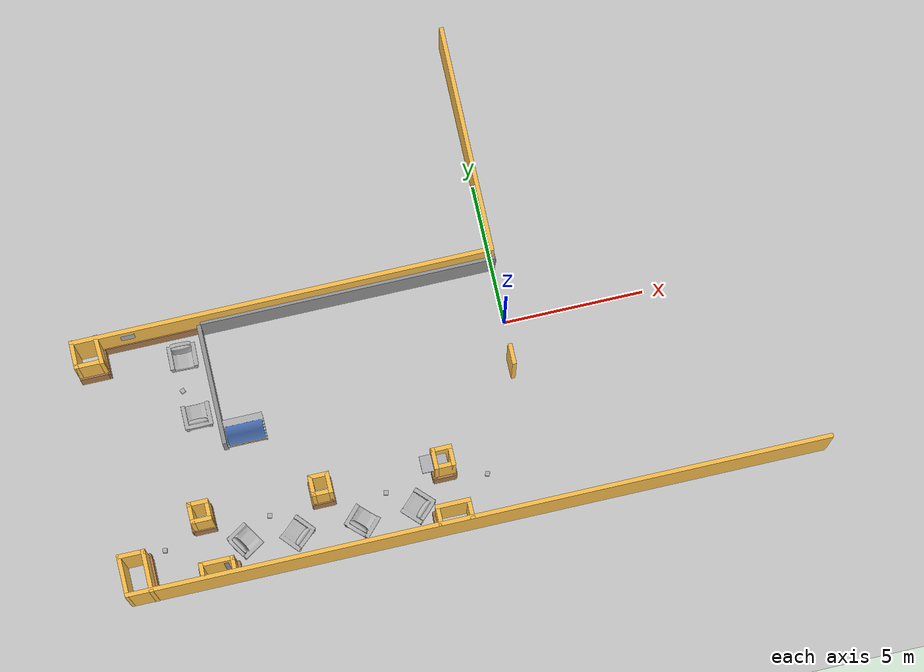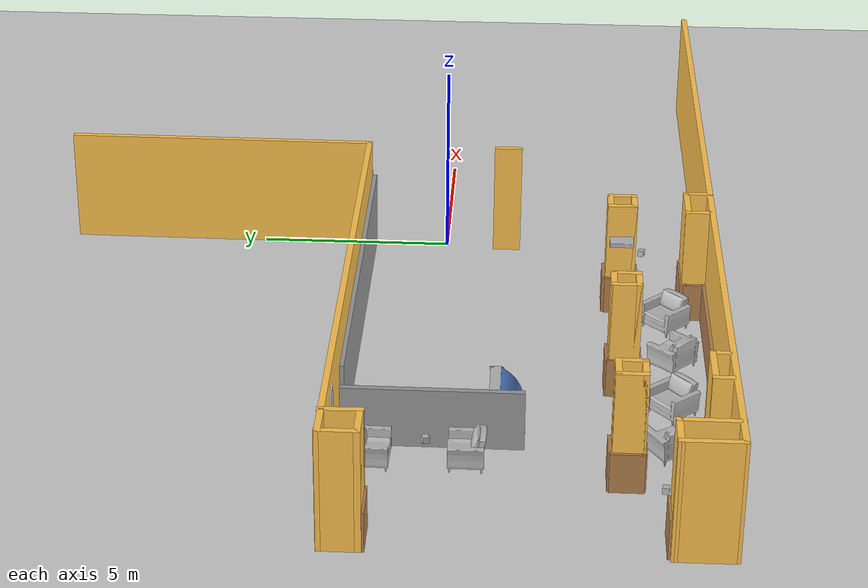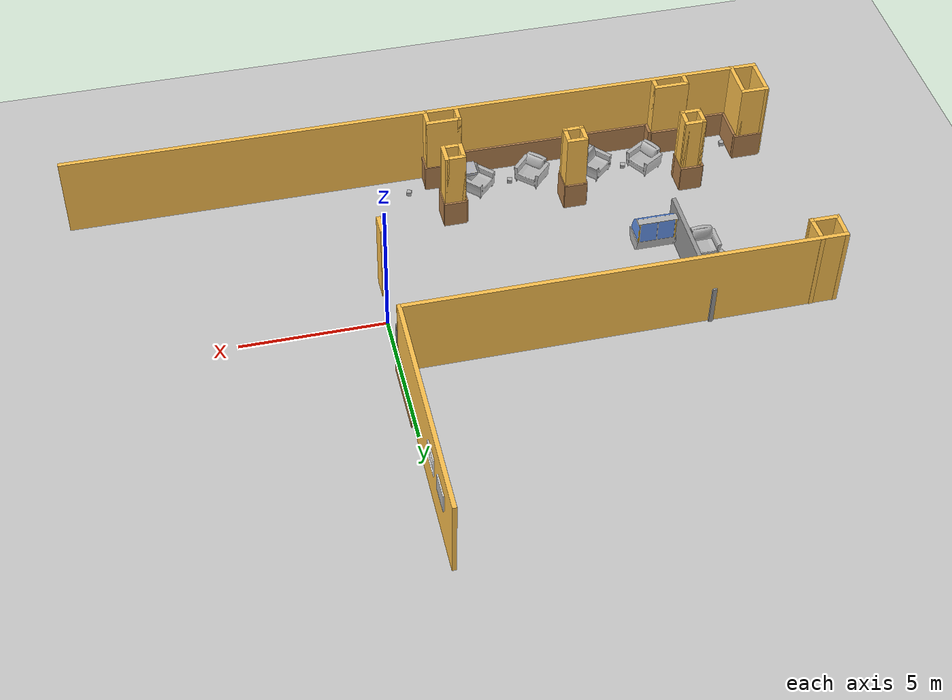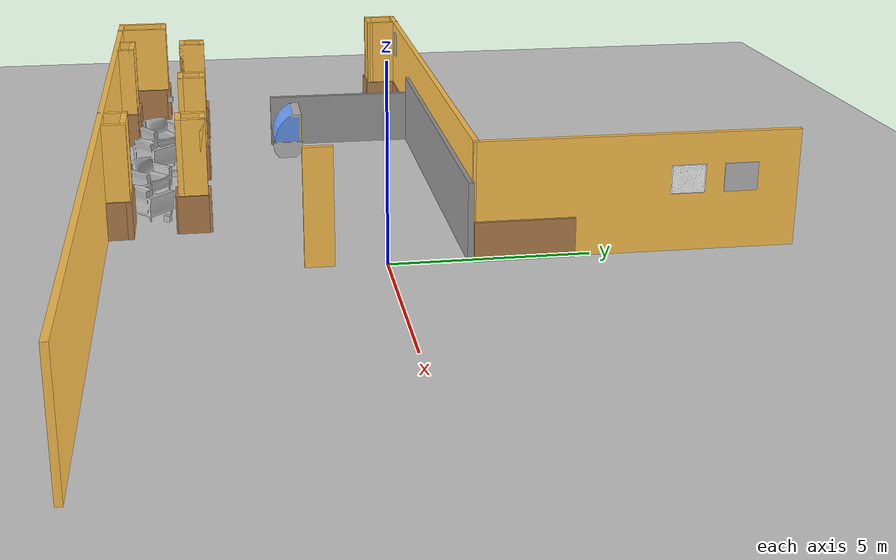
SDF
<sdf version="1.6">
 <world name="default">
  <model name="ground_plane">
   <static>1</static>
   <link name="link">
    <collision name="collision">
     <geometry><plane><normal>0 0 1</normal><size>100 100</size></plane></geometry>
     <surface><friction><ode><mu>100</mu><mu2>50</mu2></ode></friction></surface>
    </collision>
    <visual name="visual">
     <cast_shadows>0</cast_shadows>
     <geometry><plane><normal>0 0 1</normal><size>100 100</size></plane></geometry>
     <material>
      <script><uri>file://media/materials/scripts/gazebo.material</uri><name>Gazebo/Grey</name></script>
     </material>
    </visual>
   </link>
  </model>
  <model name="costa-gv">
   <pose>-2.49048 1.64389 0 0 -0 0</pose>
   <link name="Wall_10">
    <collision name="Wall_10_Collision">
     <geometry><box><size>15 0.15 3</size></box></geometry>
     <pose>0 0 1.5 0 -0 0</pose>
    </collision>
    <visual name="Wall_10_Visual">
     <pose>0 0 1.5 0 -0 0</pose>
     <geometry><box><size>15 0.15 3</size></box></geometry>
     <material>
      <script><uri>file://media/materials/scripts/gazebo.material</uri><name>Gazebo/Grey</name></script>
      <ambient>1 0.764706 0.305882 1</ambient>
     </material>
     <meta><layer>0</layer></meta>
    </visual>
    <pose>-4.93585 0.471568 0 0 -0 -3.14024</pose>
   </link>
   <link name="Wall_103">
    <collision name="Wall_103_Collision">
     <geometry><box><size>3.4811 0.15 1</size></box></geometry>
     <pose>0 0 0.5 0 -0 0</pose>
    </collision>
    <visual name="Wall_103_Visual">
     <pose>0 0 0.5 0 -0 0</pose>
     <geometry><box><size>3.4811 0.15 1</size></box></geometry>
     <material>
      <script><uri>file://media/materials/scripts/gazebo.material</uri><name>Gazebo/Wood</name></script>
      <ambient>1 1 1 1</ambient>
     </material>
     <meta><layer>0</layer></meta>
    </visual>
    <pose>-9.76907 0.427453 0 0 -0 3.14152</pose>
   </link>
   <link name="Wall_108">
    <collision name="Wall_108_Collision">
     <geometry><box><size>1 0.15 1</size></box></geometry>
     <pose>0 0 0.5 0 -0 0</pose>
    </collision>
    <visual name="Wall_108_Visual">
     <pose>0 0 0.5 0 -0 0</pose>
     <geometry><box><size>1 0.15 1</size></box></geometry>
     <material>
      <script><uri>file://media/materials/scripts/gazebo.material</uri><name>Gazebo/Wood</name></script>
      <ambient>1 1 1 1</ambient>
     </material>
     <meta><layer>0</layer></meta>
    </visual>
    <pose>-11.4344 -0.007502 0 0 -0 -1.5708</pose>
   </link>
   <link name="Wall_117">
    <collision name="Wall_117_Collision">
     <geometry><box><size>1 0.15 1</size></box></geometry>
     <pose>0 0 0.5 0 -0 0</pose>
    </collision>
    <visual name="Wall_117_Visual">
     <pose>0 0 0.5 0 -0 0</pose>
     <geometry><box><size>1 0.15 1</size></box></geometry>
     <material>
      <script><uri>file://media/materials/scripts/gazebo.material</uri><name>Gazebo/Wood</name></script>
      <ambient>1 1 1 1</ambient>
     </material>
     <meta><layer>0</layer></meta>
    </visual>
    <pose>-11.9319 -0.439362 0 0 -0 0</pose>
   </link>
   <link name="Wall_122">
    <collision name="Wall_122_Collision">
     <geometry><box><size>1 0.15 1</size></box></geometry>
     <pose>0 0 0.5 0 -0 0</pose>
    </collision>
    <visual name="Wall_122_Visual">
     <pose>0 0 0.5 0 -0 0</pose>
     <geometry><box><size>1 0.15 1</size></box></geometry>
     <material>
      <script><uri>file://media/materials/scripts/gazebo.material</uri><name>Gazebo/Wood</name></script>
      <ambient>1 1 1 1</ambient>
     </material>
     <meta><layer>0</layer></meta>
    </visual>
    <pose>-11.8018 -7.05636 0 0 -0 0</pose>
   </link>
   <link name="Wall_124">
    <collision name="Wall_124_Collision">
     <geometry><box><size>1.25 0.15 1</size></box></geometry>
     <pose>0 0 0.5 0 -0 0</pose>
    </collision>
    <visual name="Wall_124_Visual">
     <pose>0 0 0.5 0 -0 0</pose>
     <geometry><box><size>1.25 0.15 1</size></box></geometry>
     <material>
      <script><uri>file://media/materials/scripts/gazebo.material</uri><name>Gazebo/Wood</name></script>
      <ambient>1 1 1 1</ambient>
     </material>
     <meta><layer>0</layer></meta>
    </visual>
    <pose>-11.3608 -7.72636 0 0 -0 -1.5708</pose>
   </link>
   <link name="Wall_126">
    <collision name="Wall_126_Collision">
     <geometry><box><size>1.75 0.15 1</size></box></geometry>
     <pose>0 0 0.5 0 -0 0</pose>
    </collision>
    <visual name="Wall_126_Visual">
     <pose>0 0 0.5 0 -0 0</pose>
     <geometry><box><size>1.75 0.15 1</size></box></geometry>
     <material>
      <script><uri>file://media/materials/scripts/gazebo.material</uri><name>Gazebo/Wood</name></script>
      <ambient>1 1 1 1</ambient>
     </material>
     <meta><layer>0</layer></meta>
    </visual>
    <pose>-10.5508 -8.37536 0 0 -0 0</pose>
   </link>
   <link name="Wall_128">
    <collision name="Wall_128_Collision">
     <geometry><box><size>1.25 0.15 1</size></box></geometry>
     <pose>0 0 0.5 0 -0 0</pose>
    </collision>
    <visual name="Wall_128_Visual">
     <pose>0 0 0.5 0 -0 0</pose>
     <geometry><box><size>1.25 0.15 1</size></box></geometry>
     <material>
      <script><uri>file://media/materials/scripts/gazebo.material</uri><name>Gazebo/Wood</name></script>
      <ambient>1 1 1 1</ambient>
     </material>
     <meta><layer>0</layer></meta>
    </visual>
    <pose>-9.08885 -7.91136 0 0 -0 0</pose>
   </link>
   <link name="Wall_130">
    <collision name="Wall_130_Collision">
     <geometry><box><size>0.5 0.15 1</size></box></geometry>
     <pose>0 0 0.5 0 -0 0</pose>
    </collision>
    <visual name="Wall_130_Visual">
     <pose>0 0 0.5 0 -0 0</pose>
     <geometry><box><size>0.5 0.15 1</size></box></geometry>
     <material>
      <script><uri>file://media/materials/scripts/gazebo.material</uri><name>Gazebo/Wood</name></script>
      <ambient>1 1 1 1</ambient>
     </material>
     <meta><layer>0</layer></meta>
    </visual>
    <pose>-8.42085 -8.15736 0 0 -0 -1.5708</pose>
   </link>
   <link name="Wall_132">
    <collision name="Wall_132_Collision">
     <geometry><box><size>0.5 0.15 1</size></box></geometry>
     <pose>0 0 0.5 0 -0 0</pose>
    </collision>
    <visual name="Wall_132_Visual">
     <pose>0 0 0.5 0 -0 0</pose>
     <geometry><box><size>0.5 0.15 1</size></box></geometry>
     <material>
      <script><uri>file://media/materials/scripts/gazebo.material</uri><name>Gazebo/Wood</name></script>
      <ambient>1 1 1 1</ambient>
     </material>
     <meta><layer>0</layer></meta>
    </visual>
    <pose>-9.72985 -8.13736 0 0 -0 -1.5708</pose>
   </link>
   <link name="Wall_134">
    <collision name="Wall_134_Collision">
     <geometry><box><size>7 0.15 1</size></box></geometry>
     <pose>0 0 0.5 0 -0 0</pose>
    </collision>
    <visual name="Wall_134_Visual">
     <pose>0 0 0.5 0 -0 0</pose>
     <geometry><box><size>7 0.15 1</size></box></geometry>
     <material>
      <script><uri>file://media/materials/scripts/gazebo.material</uri><name>Gazebo/Wood</name></script>
      <ambient>1 1 1 1</ambient>
     </material>
     <meta><layer>0</layer></meta>
    </visual>
    <pose>-4.89485 -8.37536 0 0 -0 0</pose>
   </link>
   <link name="Wall_137">
    <collision name="Wall_137_Collision">
     <geometry><box><size>0.5 0.15 1</size></box></geometry>
     <pose>0 0 0.5 0 -0 0</pose>
    </collision>
    <visual name="Wall_137_Visual">
     <pose>0 0 0.5 0 -0 0</pose>
     <geometry><box><size>0.5 0.15 1</size></box></geometry>
     <material>
      <script><uri>file://media/materials/scripts/gazebo.material</uri><name>Gazebo/Wood</name></script>
      <ambient>1 1 1 1</ambient>
     </material>
     <meta><layer>0</layer></meta>
    </visual>
    <pose>-1.42185 -8.07636 0 0 -0 -1.5708</pose>
   </link>
   <link name="Wall_141">
    <collision name="Wall_141_Collision">
     <geometry><box><size>0.8 0.15 1</size></box></geometry>
     <pose>0 0 0.5 0 -0 0</pose>
    </collision>
    <visual name="Wall_141_Visual">
     <pose>0 0 0.5 0 -0 0</pose>
     <geometry><box><size>0.8 0.15 1</size></box></geometry>
     <material>
      <script><uri>file://media/materials/scripts/gazebo.material</uri><name>Gazebo/Wood</name></script>
      <ambient>1 1 1 1</ambient>
     </material>
     <meta><layer>0</layer></meta>
    </visual>
    <pose>-9.29371 -6.54229 0 0 -0 0</pose>
   </link>
   <link name="Wall_146">
    <collision name="Wall_146_Collision">
     <geometry><box><size>0.8 0.15 1</size></box></geometry>
     <pose>0 0 0.5 0 -0 0</pose>
    </collision>
    <visual name="Wall_146_Visual">
     <pose>0 0 0.5 0 -0 0</pose>
     <geometry><box><size>0.8 0.15 1</size></box></geometry>
     <material>
      <script><uri>file://media/materials/scripts/gazebo.material</uri><name>Gazebo/Wood</name></script>
      <ambient>1 1 1 1</ambient>
     </material>
     <meta><layer>0</layer></meta>
    </visual>
    <pose>-9.30375 -5.81726 0 0 -0 0</pose>
   </link>
   <link name="Wall_148">
    <collision name="Wall_148_Collision">
     <geometry><box><size>0.8 0.15 1</size></box></geometry>
     <pose>0 0 0.5 0 -0 0</pose>
    </collision>
    <visual name="Wall_148_Visual">
     <pose>0 0 0.5 0 -0 0</pose>
     <geometry><box><size>0.8 0.15 1</size></box></geometry>
     <material>
      <script><uri>file://media/materials/scripts/gazebo.material</uri><name>Gazebo/Wood</name></script>
      <ambient>1 1 1 1</ambient>
     </material>
     <meta><layer>0</layer></meta>
    </visual>
    <pose>-8.9742 -6.19261 0 0 -0 -1.5708</pose>
   </link>
   <link name="Wall_150">
    <collision name="Wall_150_Collision">
     <geometry><box><size>0.8 0.15 1</size></box></geometry>
     <pose>0 0 0.5 0 -0 0</pose>
    </collision>
    <visual name="Wall_150_Visual">
     <pose>0 0 0.5 0 -0 0</pose>
     <geometry><box><size>0.8 0.15 1</size></box></geometry>
     <material>
      <script><uri>file://media/materials/scripts/gazebo.material</uri><name>Gazebo/Wood</name></script>
      <ambient>1 1 1 1</ambient>
     </material>
     <meta><layer>0</layer></meta>
    </visual>
    <pose>-9.66903 -6.18254 0 0 -0 -1.5708</pose>
   </link>
   <link name="Wall_152">
    <collision name="Wall_152_Collision">
     <geometry><box><size>0.8 0.15 1</size></box></geometry>
     <pose>0 0 0.5 0 -0 0</pose>
    </collision>
    <visual name="Wall_152_Visual">
     <pose>0 0 0.5 0 -0 0</pose>
     <geometry><box><size>0.8 0.15 1</size></box></geometry>
     <material>
      <script><uri>file://media/materials/scripts/gazebo.material</uri><name>Gazebo/Wood</name></script>
      <ambient>1 1 1 1</ambient>
     </material>
     <meta><layer>0</layer></meta>
    </visual>
    <pose>-5.07028 -6.54841 0 0 -0 0</pose>
   </link>
   <link name="Wall_154">
    <collision name="Wall_154_Collision">
     <geometry><box><size>0.8 0.15 1</size></box></geometry>
     <pose>0 0 0.5 0 -0 0</pose>
    </collision>
    <visual name="Wall_154_Visual">
     <pose>0 0 0.5 0 -0 0</pose>
     <geometry><box><size>0.8 0.15 1</size></box></geometry>
     <material>
      <script><uri>file://media/materials/scripts/gazebo.material</uri><name>Gazebo/Wood</name></script>
      <ambient>1 1 1 1</ambient>
     </material>
     <meta><layer>0</layer></meta>
    </visual>
    <pose>-5.07028 -5.82927 0 0 -0 0</pose>
   </link>
   <link name="Wall_156">
    <collision name="Wall_156_Collision">
     <geometry><box><size>0.8 0.15 1</size></box></geometry>
     <pose>0 0 0.5 0 -0 0</pose>
    </collision>
    <visual name="Wall_156_Visual">
     <pose>0 0 0.5 0 -0 0</pose>
     <geometry><box><size>0.8 0.15 1</size></box></geometry>
     <material>
      <script><uri>file://media/materials/scripts/gazebo.material</uri><name>Gazebo/Wood</name></script>
      <ambient>1 1 1 1</ambient>
     </material>
     <meta><layer>0</layer></meta>
    </visual>
    <pose>-4.7294 -6.19422 0 0 -0 -1.5708</pose>
   </link>
   <link name="Wall_158">
    <collision name="Wall_158_Collision">
     <geometry><box><size>0.8 0.15 1</size></box></geometry>
     <pose>0 0 0.5 0 -0 0</pose>
    </collision>
    <visual name="Wall_158_Visual">
     <pose>0 0 0.5 0 -0 0</pose>
     <geometry><box><size>0.8 0.15 1</size></box></geometry>
     <material>
      <script><uri>file://media/materials/scripts/gazebo.material</uri><name>Gazebo/Wood</name></script>
      <ambient>1 1 1 1</ambient>
     </material>
     <meta><layer>0</layer></meta>
    </visual>
    <pose>-5.42191 -6.19422 0 0 -0 -1.5708</pose>
   </link>
   <link name="Wall_160">
    <collision name="Wall_160_Collision">
     <geometry><box><size>1.4 0.15 1</size></box></geometry>
     <pose>0 0 0.5 0 -0 0</pose>
    </collision>
    <visual name="Wall_160_Visual">
     <pose>0 0 0.5 0 -0 0</pose>
     <geometry><box><size>1.4 0.15 1</size></box></geometry>
     <material>
      <script><uri>file://media/materials/scripts/gazebo.material</uri><name>Gazebo/Wood</name></script>
      <ambient>1 1 1 1</ambient>
     </material>
     <meta><layer>0</layer></meta>
    </visual>
    <pose>-0.788355 -7.81357 0 0 -0 0</pose>
   </link>
   <link name="Wall_162">
    <collision name="Wall_162_Collision">
     <geometry><box><size>0.7 0.15 1</size></box></geometry>
     <pose>0 0 0.5 0 -0 0</pose>
    </collision>
    <visual name="Wall_162_Visual">
     <pose>0 0 0.5 0 -0 0</pose>
     <geometry><box><size>0.7 0.15 1</size></box></geometry>
     <material>
      <script><uri>file://media/materials/scripts/gazebo.material</uri><name>Gazebo/Wood</name></script>
      <ambient>1 1 1 1</ambient>
     </material>
     <meta><layer>0</layer></meta>
    </visual>
    <pose>-0.174848 -8.16836 0 0 -0 -1.5708</pose>
   </link>
   <link name="Wall_167">
    <collision name="Wall_167_Collision">
     <geometry><box><size>0.8 0.15 1</size></box></geometry>
     <pose>0 0 0.5 0 -0 0</pose>
    </collision>
    <visual name="Wall_167_Visual">
     <pose>0 0 0.5 0 -0 0</pose>
     <geometry><box><size>0.8 0.15 1</size></box></geometry>
     <material>
      <script><uri>file://media/materials/scripts/gazebo.material</uri><name>Gazebo/Wood</name></script>
      <ambient>1 1 1 1</ambient>
     </material>
     <meta><layer>0</layer></meta>
    </visual>
    <pose>-1.13366 -6.23417 0 0 -0 -1.5708</pose>
   </link>
   <link name="Wall_169">
    <collision name="Wall_169_Collision">
     <geometry><box><size>0.8 0.15 1</size></box></geometry>
     <pose>0 0 0.5 0 -0 0</pose>
    </collision>
    <visual name="Wall_169_Visual">
     <pose>0 0 0.5 0 -0 0</pose>
     <geometry><box><size>0.8 0.15 1</size></box></geometry>
     <material>
      <script><uri>file://media/materials/scripts/gazebo.material</uri><name>Gazebo/Wood</name></script>
      <ambient>1 1 1 1</ambient>
     </material>
     <meta><layer>0</layer></meta>
    </visual>
    <pose>-0.414512 -6.23417 0 0 -0 -1.5708</pose>
   </link>
   <link name="Wall_171">
    <collision name="Wall_171_Collision">
     <geometry><box><size>0.8 0.15 1</size></box></geometry>
     <pose>0 0 0.5 0 -0 0</pose>
    </collision>
    <visual name="Wall_171_Visual">
     <pose>0 0 0.5 0 -0 0</pose>
     <geometry><box><size>0.8 0.15 1</size></box></geometry>
     <material>
      <script><uri>file://media/materials/scripts/gazebo.material</uri><name>Gazebo/Wood</name></script>
      <ambient>1 1 1 1</ambient>
     </material>
     <meta><layer>0</layer></meta>
    </visual>
    <pose>-0.768707 -6.60168 0 0 -0 0</pose>
   </link>
   <link name="Wall_173">
    <collision name="Wall_173_Collision">
     <geometry><box><size>0.8 0.15 1</size></box></geometry>
     <pose>0 0 0.5 0 -0 0</pose>
    </collision>
    <visual name="Wall_173_Visual">
     <pose>0 0 0.5 0 -0 0</pose>
     <geometry><box><size>0.8 0.15 1</size></box></geometry>
     <material>
      <script><uri>file://media/materials/scripts/gazebo.material</uri><name>Gazebo/Wood</name></script>
      <ambient>1 1 1 1</ambient>
     </material>
     <meta><layer>0</layer></meta>
    </visual>
    <pose>-0.75539 -5.84258 0 0 -0 0</pose>
   </link>
   <link name="Wall_195">
    <collision name="Wall_195_Collision">
     <geometry><box><size>2.5 0.15 1</size></box></geometry>
     <pose>0 0 0.5 0 -0 0</pose>
    </collision>
    <visual name="Wall_195_Visual">
     <pose>0 0 0.5 0 -0 0</pose>
     <geometry><box><size>2.5 0.15 1</size></box></geometry>
     <material>
      <script><uri>file://media/materials/scripts/gazebo.material</uri><name>Gazebo/Wood</name></script>
      <ambient>1 1 1 1</ambient>
     </material>
     <meta><layer>0</layer></meta>
    </visual>
    <pose>2.58315 1.69081 0 0 -0 -1.5708</pose>
   </link>
   <link name="Wall_20">
    <collision name="Wall_20_Collision">
     <geometry><box><size>0.75 0.15 3</size></box></geometry>
     <pose>0 0 1.5 0 -0 0</pose>
    </collision>
    <visual name="Wall_20_Visual">
     <pose>0 0 1.5 0 -0 0</pose>
     <geometry><box><size>0.75 0.15 3</size></box></geometry>
     <material>
      <script><uri>file://media/materials/scripts/gazebo.material</uri><name>Gazebo/Grey</name></script>
      <ambient>1 0.764706 0.305882 1</ambient>
     </material>
     <meta><layer>0</layer></meta>
    </visual>
    <pose>-9.28985 -5.90136 0 0 -0 0</pose>
   </link>
   <link name="Wall_21">
    <collision name="Wall_21_Collision">
     <geometry><box><size>0.75 0.15 3</size></box></geometry>
     <pose>0 0 1.5 0 -0 0</pose>
    </collision>
    <visual name="Wall_21_Visual">
     <pose>0 0 1.5 0 -0 0</pose>
     <geometry><box><size>0.75 0.15 3</size></box></geometry>
     <material>
      <script><uri>file://media/materials/scripts/gazebo.material</uri><name>Gazebo/Grey</name></script>
      <ambient>1 0.764706 0.305882 1</ambient>
     </material>
     <meta><layer>0</layer></meta>
    </visual>
    <pose>-8.98985 -6.20136 0 0 -0 -1.5708</pose>
   </link>
   <link name="Wall_219">
    <collision name="Wall_219_Collision">
     <geometry><box><size>10.5 0.15 2</size></box></geometry>
     <pose>0 0 1 0 -0 0</pose>
    </collision>
    <visual name="Wall_219_Visual">
     <pose>0 0 1 0 -0 0</pose>
     <geometry><box><size>10.5 0.15 2</size></box></geometry>
     <material>
      <script><uri>file://media/materials/scripts/gazebo.material</uri><name>Gazebo/Grey</name></script>
      <ambient>1 1 1 1</ambient>
     </material>
     <meta><layer>0</layer></meta>
    </visual>
    <pose>-2.66326 0.365931 0 0 -0 3.14159</pose>
   </link>
   <link name="Wall_22">
    <collision name="Wall_22_Collision">
     <geometry><box><size>0.75 0.15 3</size></box></geometry>
     <pose>0 0 1.5 0 -0 0</pose>
    </collision>
    <visual name="Wall_22_Visual">
     <pose>0 0 1.5 0 -0 0</pose>
     <geometry><box><size>0.75 0.15 3</size></box></geometry>
     <material>
      <script><uri>file://media/materials/scripts/gazebo.material</uri><name>Gazebo/Grey</name></script>
      <ambient>1 0.764706 0.305882 1</ambient>
     </material>
     <meta><layer>0</layer></meta>
    </visual>
    <pose>-9.28985 -6.50136 0 0 -0 3.14159</pose>
   </link>
   <link name="Wall_23">
    <collision name="Wall_23_Collision">
     <geometry><box><size>0.75 0.15 3</size></box></geometry>
     <pose>0 0 1.5 0 -0 0</pose>
    </collision>
    <visual name="Wall_23_Visual">
     <pose>0 0 1.5 0 -0 0</pose>
     <geometry><box><size>0.75 0.15 3</size></box></geometry>
     <material>
      <script><uri>file://media/materials/scripts/gazebo.material</uri><name>Gazebo/Grey</name></script>
      <ambient>1 0.764706 0.305882 1</ambient>
     </material>
     <meta><layer>0</layer></meta>
    </visual>
    <pose>-9.58985 -6.20136 0 0 -0 1.5708</pose>
   </link>
   <link name="Wall_25">
    <collision name="Wall_25_Collision">
     <geometry><box><size>0.75 0.15 3</size></box></geometry>
     <pose>0 0 1.5 0 -0 0</pose>
    </collision>
    <visual name="Wall_25_Visual">
     <pose>0 0 1.5 0 -0 0</pose>
     <geometry><box><size>0.75 0.15 3</size></box></geometry>
     <material>
      <script><uri>file://media/materials/scripts/gazebo.material</uri><name>Gazebo/Grey</name></script>
      <ambient>1 0.764706 0.305882 1</ambient>
     </material>
     <meta><layer>0</layer></meta>
    </visual>
    <pose>-5.05985 -5.90136 0 0 -0 0</pose>
   </link>
   <link name="Wall_26">
    <collision name="Wall_26_Collision">
     <geometry><box><size>0.75 0.15 3</size></box></geometry>
     <pose>0 0 1.5 0 -0 0</pose>
    </collision>
    <visual name="Wall_26_Visual">
     <pose>0 0 1.5 0 -0 0</pose>
     <geometry><box><size>0.75 0.15 3</size></box></geometry>
     <material>
      <script><uri>file://media/materials/scripts/gazebo.material</uri><name>Gazebo/Grey</name></script>
      <ambient>1 0.764706 0.305882 1</ambient>
     </material>
     <meta><layer>0</layer></meta>
    </visual>
    <pose>-4.75985 -6.20136 0 0 -0 -1.5708</pose>
   </link>
   <link name="Wall_29">
    <collision name="Wall_29_Collision">
     <geometry><box><size>0.75 0.15 3</size></box></geometry>
     <pose>0 0 1.5 0 -0 0</pose>
    </collision>
    <visual name="Wall_29_Visual">
     <pose>0 0 1.5 0 -0 0</pose>
     <geometry><box><size>0.75 0.15 3</size></box></geometry>
     <material>
      <script><uri>file://media/materials/scripts/gazebo.material</uri><name>Gazebo/Grey</name></script>
      <ambient>1 0.764706 0.305882 1</ambient>
     </material>
     <meta><layer>0</layer></meta>
    </visual>
    <pose>-5.35985 -6.20136 0 0 -0 -1.5708</pose>
   </link>
   <link name="Wall_30">
    <collision name="Wall_30_Collision">
     <geometry><box><size>0.75 0.15 3</size></box></geometry>
     <pose>0 0 1.5 0 -0 0</pose>
    </collision>
    <visual name="Wall_30_Visual">
     <pose>0 0 1.5 0 -0 0</pose>
     <geometry><box><size>0.75 0.15 3</size></box></geometry>
     <material>
      <script><uri>file://media/materials/scripts/gazebo.material</uri><name>Gazebo/Grey</name></script>
      <ambient>1 0.764706 0.305882 1</ambient>
     </material>
     <meta><layer>0</layer></meta>
    </visual>
    <pose>-5.05985 -6.50136 0 0 -0 0</pose>
   </link>
   <link name="Wall_32">
    <collision name="Wall_32_Collision">
     <geometry><box><size>0.75 0.15 3</size></box></geometry>
     <pose>0 0 1.5 0 -0 0</pose>
    </collision>
    <visual name="Wall_32_Visual">
     <pose>0 0 1.5 0 -0 0</pose>
     <geometry><box><size>0.75 0.15 3</size></box></geometry>
     <material>
      <script><uri>file://media/materials/scripts/gazebo.material</uri><name>Gazebo/Grey</name></script>
      <ambient>1 0.764706 0.305882 1</ambient>
     </material>
     <meta><layer>0</layer></meta>
    </visual>
    <pose>-0.759848 -5.92136 0 0 -0 0</pose>
   </link>
   <link name="Wall_33">
    <collision name="Wall_33_Collision">
     <geometry><box><size>0.75 0.15 3</size></box></geometry>
     <pose>0 0 1.5 0 -0 0</pose>
    </collision>
    <visual name="Wall_33_Visual">
     <pose>0 0 1.5 0 -0 0</pose>
     <geometry><box><size>0.75 0.15 3</size></box></geometry>
     <material>
      <script><uri>file://media/materials/scripts/gazebo.material</uri><name>Gazebo/Grey</name></script>
      <ambient>1 0.764706 0.305882 1</ambient>
     </material>
     <meta><layer>0</layer></meta>
    </visual>
    <pose>-0.459848 -6.22136 0 0 -0 -1.5708</pose>
   </link>
   <link name="Wall_34">
    <collision name="Wall_34_Collision">
     <geometry><box><size>0.75 0.15 3</size></box></geometry>
     <pose>0 0 1.5 0 -0 0</pose>
    </collision>
    <visual name="Wall_34_Visual">
     <pose>0 0 1.5 0 -0 0</pose>
     <geometry><box><size>0.75 0.15 3</size></box></geometry>
     <material>
      <script><uri>file://media/materials/scripts/gazebo.material</uri><name>Gazebo/Grey</name></script>
      <ambient>1 0.764706 0.305882 1</ambient>
     </material>
     <meta><layer>0</layer></meta>
    </visual>
    <pose>-0.759848 -6.52136 0 0 -0 3.14159</pose>
   </link>
   <link name="Wall_35">
    <collision name="Wall_35_Collision">
     <geometry><box><size>0.75 0.15 3</size></box></geometry>
     <pose>0 0 1.5 0 -0 0</pose>
    </collision>
    <visual name="Wall_35_Visual">
     <pose>0 0 1.5 0 -0 0</pose>
     <geometry><box><size>0.75 0.15 3</size></box></geometry>
     <material>
      <script><uri>file://media/materials/scripts/gazebo.material</uri><name>Gazebo/Grey</name></script>
      <ambient>1 0.764706 0.305882 1</ambient>
     </material>
     <meta><layer>0</layer></meta>
    </visual>
    <pose>-1.05985 -6.22136 0 0 -0 1.5708</pose>
   </link>
   <link name="Wall_40">
    <collision name="Wall_40_Collision">
     <geometry><box><size>0.73251 0.15 3</size></box></geometry>
     <pose>0 0 1.5 0 -0 0</pose>
    </collision>
    <visual name="Wall_40_Visual">
     <pose>0 0 1.5 0 -0 0</pose>
     <geometry><box><size>0.73251 0.15 3</size></box></geometry>
     <material>
      <script><uri>file://media/materials/scripts/gazebo.material</uri><name>Gazebo/Grey</name></script>
      <ambient>1 0.764706 0.305882 1</ambient>
     </material>
     <meta><layer>0</layer></meta>
    </visual>
    <pose>2.35465 -3.26586 0 0 -0 1.57251</pose>
   </link>
   <link name="Wall_60">
    <collision name="Wall_60_Collision">
     <geometry><box><size>24.796 0.15 3</size></box></geometry>
     <pose>0 0 1.5 0 -0 0</pose>
    </collision>
    <visual name="Wall_60_Visual">
     <pose>0 0 1.5 0 -0 0</pose>
     <geometry><box><size>24.796 0.15 3</size></box></geometry>
     <material>
      <script><uri>file://media/materials/scripts/gazebo.material</uri><name>Gazebo/Grey</name></script>
      <ambient>1 0.764706 0.305882 1</ambient>
     </material>
     <meta><layer>0</layer></meta>
    </visual>
    <pose>0.037152 -8.45936 0 0 -0 3.14159</pose>
   </link>
   <link name="Wall_62">
    <collision name="Wall_62_Collision">
     <geometry><box><size>1.49162 0.15 3</size></box></geometry>
     <pose>0 0 1.5 0 -0 0</pose>
    </collision>
    <visual name="Wall_62_Visual">
     <pose>0 0 1.5 0 -0 0</pose>
     <geometry><box><size>1.49162 0.15 3</size></box></geometry>
     <material>
      <script><uri>file://media/materials/scripts/gazebo.material</uri><name>Gazebo/Grey</name></script>
      <ambient>1 0.764706 0.305882 1</ambient>
     </material>
     <meta><layer>0</layer></meta>
    </visual>
    <pose>-12.2913 -7.78886 0 0 -0 -1.56259</pose>
   </link>
   <link name="Wall_64">
    <collision name="Wall_64_Collision">
     <geometry><box><size>1 0.15 3</size></box></geometry>
     <pose>0 0 1.5 0 -0 0</pose>
    </collision>
    <visual name="Wall_64_Visual">
     <pose>0 0 1.5 0 -0 0</pose>
     <geometry><box><size>1 0.15 3</size></box></geometry>
     <material>
      <script><uri>file://media/materials/scripts/gazebo.material</uri><name>Gazebo/Grey</name></script>
      <ambient>1 0.764706 0.305882 1</ambient>
     </material>
     <meta><layer>0</layer></meta>
    </visual>
    <pose>-11.8718 -7.11836 0 0 -0 0</pose>
   </link>
   <link name="Wall_65">
    <collision name="Wall_65_Collision">
     <geometry><box><size>1.5 0.15 3</size></box></geometry>
     <pose>0 0 1.5 0 -0 0</pose>
    </collision>
    <visual name="Wall_65_Visual">
     <pose>0 0 1.5 0 -0 0</pose>
     <geometry><box><size>1.5 0.15 3</size></box></geometry>
     <material>
      <script><uri>file://media/materials/scripts/gazebo.material</uri><name>Gazebo/Grey</name></script>
      <ambient>1 0.764706 0.305882 1</ambient>
     </material>
     <meta><layer>0</layer></meta>
    </visual>
    <pose>-11.4468 -7.79336 0 0 -0 -1.5708</pose>
   </link>
   <link name="Wall_67">
    <collision name="Wall_67_Collision">
     <geometry><box><size>0.5 0.15 3</size></box></geometry>
     <pose>0 0 1.5 0 -0 0</pose>
    </collision>
    <visual name="Wall_67_Visual">
     <pose>0 0 1.5 0 -0 0</pose>
     <geometry><box><size>0.5 0.15 3</size></box></geometry>
     <material>
      <script><uri>file://media/materials/scripts/gazebo.material</uri><name>Gazebo/Grey</name></script>
      <ambient>1 0.764706 0.305882 1</ambient>
     </material>
     <meta><layer>0</layer></meta>
    </visual>
    <pose>-9.62785 -8.17636 0 0 -0 1.5708</pose>
   </link>
   <link name="Wall_69">
    <collision name="Wall_69_Collision">
     <geometry><box><size>0.15 0.15 2.5</size></box></geometry>
     <pose>0 0 1.25 0 -0 0</pose>
    </collision>
    <visual name="Wall_69_Visual">
     <pose>0 0 1.25 0 -0 0</pose>
     <geometry><box><size>0.15 0.15 2.5</size></box></geometry>
     <material>
      <script><uri>file://media/materials/scripts/gazebo.material</uri><name>Gazebo/Grey</name></script>
      <ambient>1 1 1 1</ambient>
     </material>
     <meta><layer>0</layer></meta>
    </visual>
    <pose>-8.77792 -8.00156 0 0 -0 0</pose>
   </link>
   <link name="Wall_70">
    <collision name="Wall_70_Collision">
     <geometry><box><size>0.15 0.15 2.5</size></box></geometry>
     <pose>0 0 1.25 0 -0 0</pose>
    </collision>
    <visual name="Wall_70_Visual">
     <pose>0 0 1.25 0 -0 0</pose>
     <geometry><box><size>0.15 0.15 2.5</size></box></geometry>
     <material>
      <script><uri>file://media/materials/scripts/gazebo.material</uri><name>Gazebo/Grey</name></script>
      <ambient>1 1 1 1</ambient>
     </material>
     <meta><layer>0</layer></meta>
    </visual>
    <pose>-8.77792 -8.00156 0 0 -0 0</pose>
   </link>
   <link name="Wall_71">
    <collision name="Wall_71_Collision">
     <geometry><box><size>0.15 0.15 2.5</size></box></geometry>
     <pose>0 0 1.25 0 -0 0</pose>
    </collision>
    <visual name="Wall_71_Visual">
     <pose>0 0 1.25 0 -0 0</pose>
     <geometry><box><size>0.15 0.15 2.5</size></box></geometry>
     <material>
      <script><uri>file://media/materials/scripts/gazebo.material</uri><name>Gazebo/Grey</name></script>
      <ambient>1 1 1 1</ambient>
     </material>
     <meta><layer>0</layer></meta>
    </visual>
    <pose>-8.77792 -8.00156 0 0 -0 0</pose>
   </link>
   <link name="Wall_73">
    <collision name="Wall_73_Collision">
     <geometry><box><size>1.25 0.15 3</size></box></geometry>
     <pose>0 0 1.5 0 -0 0</pose>
    </collision>
    <visual name="Wall_73_Visual">
     <pose>0 0 1.5 0 -0 0</pose>
     <geometry><box><size>1.25 0.15 3</size></box></geometry>
     <material>
      <script><uri>file://media/materials/scripts/gazebo.material</uri><name>Gazebo/Grey</name></script>
      <ambient>1 0.764706 0.305882 1</ambient>
     </material>
     <meta><layer>0</layer></meta>
    </visual>
    <pose>-9.07785 -8.00136 0 0 -0 0</pose>
   </link>
   <link name="Wall_74">
    <collision name="Wall_74_Collision">
     <geometry><box><size>0.5 0.15 3</size></box></geometry>
     <pose>0 0 1.5 0 -0 0</pose>
    </collision>
    <visual name="Wall_74_Visual">
     <pose>0 0 1.5 0 -0 0</pose>
     <geometry><box><size>0.5 0.15 3</size></box></geometry>
     <material>
      <script><uri>file://media/materials/scripts/gazebo.material</uri><name>Gazebo/Grey</name></script>
      <ambient>1 0.764706 0.305882 1</ambient>
     </material>
     <meta><layer>0</layer></meta>
    </visual>
    <pose>-8.52785 -8.17636 0 0 -0 -1.5708</pose>
   </link>
   <link name="Wall_76">
    <collision name="Wall_76_Collision">
     <geometry><box><size>0.75 0.15 3</size></box></geometry>
     <pose>0 0 1.5 0 -0 0</pose>
    </collision>
    <visual name="Wall_76_Visual">
     <pose>0 0 1.5 0 -0 0</pose>
     <geometry><box><size>0.75 0.15 3</size></box></geometry>
     <material>
      <script><uri>file://media/materials/scripts/gazebo.material</uri><name>Gazebo/Grey</name></script>
      <ambient>1 0.764706 0.305882 1</ambient>
     </material>
     <meta><layer>0</layer></meta>
    </visual>
    <pose>-1.33185 -8.15836 0 0 -0 1.5708</pose>
   </link>
   <link name="Wall_77">
    <collision name="Wall_77_Collision">
     <geometry><box><size>1.25 0.15 3</size></box></geometry>
     <pose>0 0 1.5 0 -0 0</pose>
    </collision>
    <visual name="Wall_77_Visual">
     <pose>0 0 1.5 0 -0 0</pose>
     <geometry><box><size>1.25 0.15 3</size></box></geometry>
     <material>
      <script><uri>file://media/materials/scripts/gazebo.material</uri><name>Gazebo/Grey</name></script>
      <ambient>1 0.764706 0.305882 1</ambient>
     </material>
     <meta><layer>0</layer></meta>
    </visual>
    <pose>-0.781848 -7.85836 0 0 -0 0</pose>
   </link>
   <link name="Wall_78">
    <collision name="Wall_78_Collision">
     <geometry><box><size>0.75 0.15 3</size></box></geometry>
     <pose>0 0 1.5 0 -0 0</pose>
    </collision>
    <visual name="Wall_78_Visual">
     <pose>0 0 1.5 0 -0 0</pose>
     <geometry><box><size>0.75 0.15 3</size></box></geometry>
     <material>
      <script><uri>file://media/materials/scripts/gazebo.material</uri><name>Gazebo/Grey</name></script>
      <ambient>1 0.764706 0.305882 1</ambient>
     </material>
     <meta><layer>0</layer></meta>
    </visual>
    <pose>-0.231848 -8.15836 0 0 -0 -1.5708</pose>
   </link>
   <link name="Wall_88">
    <collision name="Wall_88_Collision">
     <geometry><box><size>1 0.15 3</size></box></geometry>
     <pose>0 0 1.5 0 -0 0</pose>
    </collision>
    <visual name="Wall_88_Visual">
     <pose>0 0 1.5 0 -0 0</pose>
     <geometry><box><size>1 0.15 3</size></box></geometry>
     <material>
      <script><uri>file://media/materials/scripts/gazebo.material</uri><name>Gazebo/Grey</name></script>
      <ambient>1 0.764706 0.305882 1</ambient>
     </material>
     <meta><layer>0</layer></meta>
    </visual>
    <pose>-12.3608 0.046568 0 0 -0 -1.5708</pose>
   </link>
   <link name="Wall_89">
    <collision name="Wall_89_Collision">
     <geometry><box><size>1.04028 0.15 3</size></box></geometry>
     <pose>0 0 1.5 0 -0 0</pose>
    </collision>
    <visual name="Wall_89_Visual">
     <pose>0 0 1.5 0 -0 0</pose>
     <geometry><box><size>1.04028 0.15 3</size></box></geometry>
     <material>
      <script><uri>file://media/materials/scripts/gazebo.material</uri><name>Gazebo/Grey</name></script>
      <ambient>1 0.764706 0.305882 1</ambient>
     </material>
     <meta><layer>0</layer></meta>
    </visual>
    <pose>-11.9157 -0.378432 0 0 -0 0</pose>
   </link>
   <link name="Wall_9">
    <collision name="Wall_9_Collision">
     <geometry><box><size>8.13971 0.15 3</size></box></geometry>
     <pose>0 0 1.5 0 -0 0</pose>
    </collision>
    <visual name="Wall_9_Visual">
     <pose>0 0 1.5 0 -0 0</pose>
     <geometry><box><size>8.13971 0.15 3</size></box></geometry>
     <material>
      <script><uri>file://media/materials/scripts/gazebo.material</uri><name>Gazebo/Grey</name></script>
      <ambient>1 0.764706 0.305882 1</ambient>
     </material>
     <meta><layer>0</layer></meta>
    </visual>
    <pose>2.51265 4.47614 0 0 -0 -1.57668</pose>
   </link>
   <link name="Wall_90">
    <collision name="Wall_90_Collision">
     <geometry><box><size>1.02107 0.15 3</size></box></geometry>
     <pose>0 0 1.5 0 -0 0</pose>
    </collision>
    <visual name="Wall_90_Visual">
     <pose>0 0 1.5 0 -0 0</pose>
     <geometry><box><size>1.02107 0.15 3</size></box></geometry>
     <material>
      <script><uri>file://media/materials/scripts/gazebo.material</uri><name>Gazebo/Grey</name></script>
      <ambient>1 0.764706 0.305882 1</ambient>
     </material>
     <meta><layer>0</layer></meta>
    </visual>
    <pose>-11.4907 0.046568 0 0 -0 1.61705</pose>
   </link>
   <link name="Wall_94">
    <collision name="Wall_94_Collision">
     <geometry><box><size>4.5 0.15 1.5</size></box></geometry>
     <pose>0 0 0.75 0 -0 0</pose>
    </collision>
    <visual name="Wall_94_Visual">
     <pose>0 0 0.75 0 -0 0</pose>
     <geometry><box><size>4.5 0.15 1.5</size></box></geometry>
     <material>
      <script><uri>file://media/materials/scripts/gazebo.material</uri><name>Gazebo/Grey</name></script>
      <ambient>0 0 0 1</ambient>
     </material>
     <meta><layer>0</layer></meta>
    </visual>
    <pose>-7.99085 -1.63536 0 0 -0 -1.5708</pose>
   </link>
   <static>1</static>
  </model>
  <model name="armchair">
   <static>1</static>
   <pose>-11.6106 0.839206 0 0 -0 1.54611</pose>
   <link name="body">
    <inertial>
     <mass>5</mass>
     <inertia><ixx>1</ixx><ixy>0</ixy><iyy>1</iyy><ixz>0</ixz><iyz>0</iyz><izz>1</izz></inertia>
    </inertial>
    <collision name="collision">
     <geometry><mesh><uri>model://armchair/meshes/armchair.dae</uri><scale>1 1 1</scale></mesh></geometry>
    </collision>
    <visual name="visual">
     <geometry><mesh><uri>model://armchair/meshes/armchair.dae</uri><scale>1 1 1</scale></mesh></geometry>
    </visual>
   </link>
  </model>
  <model name="armchair_0">
   <static>1</static>
   <pose>-10.9107 -0.5043 0 0 0 -1.5708</pose>
   <link name="body">
    <inertial>
     <mass>5</mass>
     <inertia><ixx>1</ixx><ixy>0</ixy><iyy>1</iyy><ixz>0</ixz><iyz>0</iyz><izz>1</izz></inertia>
    </inertial>
    <collision name="collision">
     <geometry><mesh><uri>model://armchair/meshes/armchair.dae</uri><scale>1 1 1</scale></mesh></geometry>
    </collision>
    <visual name="visual">
     <geometry><mesh><uri>model://armchair/meshes/armchair.dae</uri><scale>1 1 1</scale></mesh></geometry>
    </visual>
   </link>
  </model>
  <model name="armchair_1">
   <static>1</static>
   <pose>-4.46909 -5.22255 0 0 0 -0.790151</pose>
   <link name="body">
    <inertial>
     <mass>5</mass>
     <inertia><ixx>1</ixx><ixy>0</ixy><iyy>1</iyy><ixz>0</ixz><iyz>0</iyz><izz>1</izz></inertia>
    </inertial>
    <collision name="collision">
     <geometry><mesh><uri>model://armchair/meshes/armchair.dae</uri><scale>1 1 1</scale></mesh></geometry>
    </collision>
    <visual name="visual">
     <geometry><mesh><uri>model://armchair/meshes/armchair.dae</uri><scale>1 1 1</scale></mesh></geometry>
    </visual>
   </link>
  </model>
  <model name="armchair_2">
   <static>1</static>
   <pose>-5.89268 -5.74266 0 0 0 -2.32605</pose>
   <link name="body">
    <inertial>
     <mass>5</mass>
     <inertia><ixx>1</ixx><ixy>0</ixy><iyy>1</iyy><ixz>0</ixz><iyz>0</iyz><izz>1</izz></inertia>
    </inertial>
    <collision name="collision">
     <geometry><mesh><uri>model://armchair/meshes/armchair.dae</uri><scale>1 1 1</scale></mesh></geometry>
    </collision>
    <visual name="visual">
     <geometry><mesh><uri>model://armchair/meshes/armchair.dae</uri><scale>1 1 1</scale></mesh></geometry>
    </visual>
   </link>
  </model>
  <model name="armchair_3">
   <static>1</static>
   <pose>-8.73138 -5.20725 0 0 0 -0.842515</pose>
   <link name="body">
    <inertial>
     <mass>5</mass>
     <inertia><ixx>1</ixx><ixy>0</ixy><iyy>1</iyy><ixz>0</ixz><iyz>0</iyz><izz>1</izz></inertia>
    </inertial>
    <collision name="collision">
     <geometry><mesh><uri>model://armchair/meshes/armchair.dae</uri><scale>1 1 1</scale></mesh></geometry>
    </collision>
    <visual name="visual">
     <geometry><mesh><uri>model://armchair/meshes/armchair.dae</uri><scale>1 1 1</scale></mesh></geometry>
    </visual>
   </link>
  </model>
  <model name="armchair_4">
   <static>1</static>
   <pose>-10.0003 -5.64243 0 0 0 -2.58139</pose>
   <link name="body">
    <inertial>
     <mass>5</mass>
     <inertia><ixx>1</ixx><ixy>0</ixy><iyy>1</iyy><ixz>0</ixz><iyz>0</iyz><izz>1</izz></inertia>
    </inertial>
    <collision name="collision">
     <geometry><mesh><uri>model://armchair/meshes/armchair.dae</uri><scale>1 1 1</scale></mesh></geometry>
    </collision>
    <visual name="visual">
     <geometry><mesh><uri>model://armchair/meshes/armchair.dae</uri><scale>1 1 1</scale></mesh></geometry>
    </visual>
   </link>
  </model>
  <model name="shelf">
   <static>1</static>
   <pose>-3.36804 -4.0405 2.05004 0 -0 0</pose>
   <link name="body">
    <inertial>
     <mass>5</mass>
     <inertia><ixx>1</ixx><ixy>0</ixy><iyy>1</iyy><ixz>0</ixz><iyz>0</iyz><izz>1</izz></inertia>
    </inertial>
    <collision name="collision">
     <geometry><mesh><uri>model://shelf/meshes/shelf.dae</uri><scale>1 1 1</scale></mesh></geometry>
    </collision>
    <visual name="visual">
     <geometry><mesh><uri>model://shelf/meshes/shelf.dae</uri><scale>1 1 1</scale></mesh></geometry>
    </visual>
   </link>
  </model>
  <model name="showcase">
   <static>1</static>
   <pose>-8.99939 -1.38169 0 0 -0 3.14159</pose>
   <link name="body">
    <inertial>
     <mass>5</mass>
     <inertia><ixx>1</ixx><ixy>0</ixy><iyy>1</iyy><ixz>0</ixz><iyz>0</iyz><izz>1</izz></inertia>
    </inertial>
    <collision name="collision">
     <geometry><mesh><uri>model://showcase/meshes/showcase.dae</uri><scale>1 1 1</scale></mesh></geometry>
    </collision>
    <visual name="visual">
     <geometry><mesh><uri>model://showcase/meshes/showcase.dae</uri><scale>1 1 1</scale></mesh></geometry>
    </visual>
   </link>
  </model>
  <model name="dashed_picture">
   <static>1</static>
   <pose>-13.1607 1.98849 2.09935 1.5708 -0 0</pose>
   <link name="body">
    <inertial>
     <mass>5</mass>
     <inertia><ixx>1</ixx><ixy>0</ixy><iyy>1</iyy><ixz>0</ixz><iyz>0</iyz><izz>1</izz></inertia>
    </inertial>
    <collision name="collision">
     <geometry>
      <mesh><uri>model://dashed_picture/meshes/dashed_picture.dae</uri><scale>1 1 1</scale></mesh>
     </geometry>
    </collision>
    <visual name="visual">
     <geometry>
      <mesh><uri>model://dashed_picture/meshes/dashed_picture.dae</uri><scale>1 1 1</scale></mesh>
     </geometry>
    </visual>
   </link>
  </model>
  <model name="two_pictures">
   <static>1</static>
   <pose>0.074174 9.15011 1.48991 0 0 -1.5708</pose>
   <link name="body">
    <inertial>
     <mass>5</mass>
     <inertia><ixx>1</ixx><ixy>0</ixy><iyy>1</iyy><ixz>0</ixz><iyz>0</iyz><izz>1</izz></inertia>
    </inertial>
    <collision name="collision">
     <geometry><mesh><uri>model://two_pictures/meshes/two_pictures.dae</uri><scale>1 1 1</scale></mesh></geometry>
    </collision>
    <visual name="visual">
     <geometry><mesh><uri>model://two_pictures/meshes/two_pictures.dae</uri><scale>1 1 1</scale></mesh></geometry>
    </visual>
   </link>
  </model>
  <model name="box">
   <static>1</static>
   <pose>-11.5671 -0.102439 0.729473 0 -0 0.399654</pose>
   <link name="body">
    <inertial>
     <mass>5</mass>
     <inertia><ixx>1</ixx><ixy>0</ixy><iyy>1</iyy><ixz>0</ixz><iyz>0</iyz><izz>1</izz></inertia>
    </inertial>
    <collision name="collision">
     <geometry><mesh><uri>model://box/meshes/box.dae</uri><scale>1 1 1</scale></mesh></geometry>
    </collision>
    <visual name="visual">
     <geometry><mesh><uri>model://box/meshes/box.dae</uri><scale>1 1 1</scale></mesh></geometry>
    </visual>
   </link>
  </model>
  <model name="box_0">
   <static>1</static>
   <pose>-13.3849 -5.40263 0.739411 0 0 -0.134064</pose>
   <link name="body">
    <inertial>
     <mass>5</mass>
     <inertia><ixx>1</ixx><ixy>0</ixy><iyy>1</iyy><ixz>0</ixz><iyz>0</iyz><izz>1</izz></inertia>
    </inertial>
    <collision name="collision">
     <geometry><mesh><uri>model://box/meshes/box.dae</uri><scale>1 1 1</scale></mesh></geometry>
    </collision>
    <visual name="visual">
     <geometry><mesh><uri>model://box/meshes/box.dae</uri><scale>1 1 1</scale></mesh></geometry>
    </visual>
   </link>
  </model>
  <model name="box_1">
   <static>1</static>
   <pose>-9.59378 -5.00953 0.734111 0 0 -0.278177</pose>
   <link name="body">
    <inertial>
     <mass>5</mass>
     <inertia><ixx>1</ixx><ixy>0</ixy><iyy>1</iyy><ixz>0</ixz><iyz>0</iyz><izz>1</izz></inertia>
    </inertial>
    <collision name="collision">
     <geometry><mesh><uri>model://box/meshes/box.dae</uri><scale>1 1 1</scale></mesh></geometry>
    </collision>
    <visual name="visual">
     <geometry><mesh><uri>model://box/meshes/box.dae</uri><scale>1 1 1</scale></mesh></geometry>
    </visual>
   </link>
  </model>
  <model name="box_2">
   <static>1</static>
   <pose>-5.49064 -5.11976 0.733567 0 0 -0.272936</pose>
   <link name="body">
    <inertial>
     <mass>5</mass>
     <inertia><ixx>1</ixx><ixy>0</ixy><iyy>1</iyy><ixz>0</ixz><iyz>0</iyz><izz>1</izz></inertia>
    </inertial>
    <collision name="collision">
     <geometry><mesh><uri>model://box/meshes/box.dae</uri><scale>1 1 1</scale></mesh></geometry>
    </collision>
    <visual name="visual">
     <geometry><mesh><uri>model://box/meshes/box.dae</uri><scale>1 1 1</scale></mesh></geometry>
    </visual>
   </link>
  </model>
  <model name="box_3">
   <static>1</static>
   <pose>-1.90999 -5.24595 0.737571 0 0 -0.370267</pose>
   <link name="body">
    <inertial>
     <mass>5</mass>
     <inertia><ixx>1</ixx><ixy>0</ixy><iyy>1</iyy><ixz>0</ixz><iyz>0</iyz><izz>1</izz></inertia>
    </inertial>
    <collision name="collision">
     <geometry><mesh><uri>model://box/meshes/box.dae</uri><scale>1 1 1</scale></mesh></geometry>
    </collision>
    <visual name="visual">
     <geometry><mesh><uri>model://box/meshes/box.dae</uri><scale>1 1 1</scale></mesh></geometry>
    </visual>
   </link>
  </model>
 </world>
</sdf>
